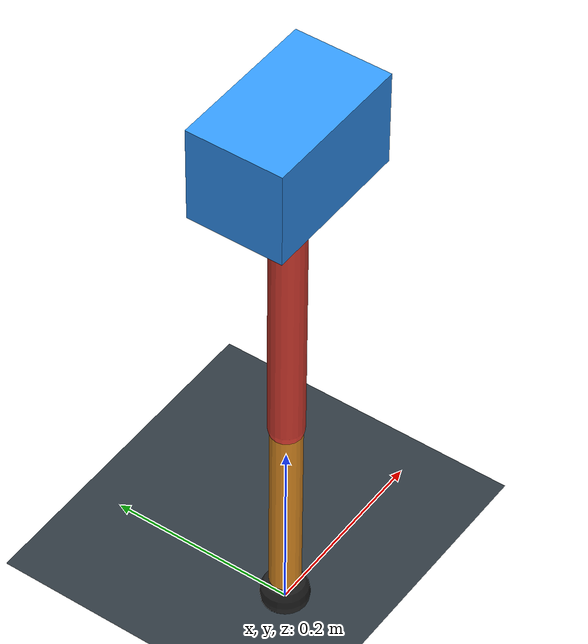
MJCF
<mujoco model="single_axis_two_bar">
  <compiler angle="radian" inertiafromgeom="true"/>
  <option timestep="0.001" integrator="implicitfast" gravity="0 0 -9.81"/>
  <default>
    <joint damping="0.08"/>
    <geom friction="1.2 0.01 0.0001" condim="3"/>
  </default>
  <worldbody>
    <geom name="floor" type="plane" size="5 5 0.1" rgba="0.18 0.22 0.25 1"/>
    <body name="carriage" pos="0 0 0.5876512092328382">
      <joint name="pole_slide" type="slide" axis="0 0 1"/>
      <geom name="payload" type="box" size="0.08 0.05 0.05" mass="2.337697486697903" rgba="0.2 0.6 1 1"/>
      <body name="thigh" pos="0 0 0">
        <joint name="hip" type="hinge" axis="0 1 0"/>
        <geom name="thigh_link" type="capsule" fromto="0 0 0 0 0 -0.34828658797693507" size="0.018" mass="0.24815879613478167" rgba="0.9 0.25 0.2 1"/>
        <body name="shank" pos="0 0 -0.34828658797693507">
          <joint name="knee" type="hinge" axis="0 1 0"/>
          <geom name="shank_link" type="capsule" fromto="0 0 0 0 0 -0.2317662050466094" size="0.016" mass="0.16513648361590774" rgba="0.95 0.6 0.15 1"/>
          <geom name="foot" type="sphere" pos="0 0 -0.2317662050466094" size="0.025" mass="0.03" rgba="0.15 0.15 0.15 1"/>
          <site name="toe" pos="0 0 -0.2317662050466094" size="0.008"/>
        </body>
      </body>
    </body>
  </worldbody>
  <actuator>
    <motor name="hip_motor" joint="hip" ctrlrange="-29.348890092395155 29.348890092395155"/>
    <motor name="knee_motor" joint="knee" ctrlrange="-104.47560614830591 104.47560614830591"/>
  </actuator>
</mujoco>
